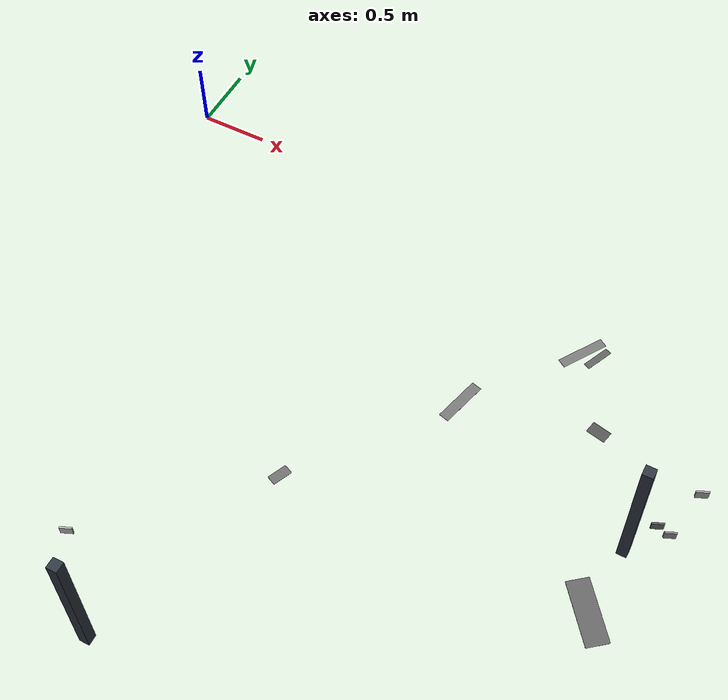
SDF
<sdf version="1.9">
 <world name="warehouse_irregular">
  <model name="concrete_patch_21">
   <static>true</static>
   <pose>3.4643936872537395 -0.6916489456248733 0.0006 0 0 1.0025813696339299</pose>
   <link name="body">
    <visual name="surface">
     <geometry><box><size>0.3482290640769431 0.06765525154568489 0.001</size></box></geometry>
     <material>
      <ambient>0.4630936487407965 0.4630936487407965 0.4630936487407965 1</ambient>
      <diffuse>0.4630936487407965 0.4630936487407965 0.4630936487407965 1</diffuse>
     </material>
    </visual>
   </link>
  </model>
  <model name="concrete_patch_47">
   <static>true</static>
   <pose>3.5740988044072353 -0.6872861657778788 0.0006 0 0 1.1461449394331407</pose>
   <link name="body">
    <visual name="surface">
     <geometry><box><size>0.20526132929796953 0.04882272836014845 0.001</size></box></geometry>
     <material>
      <ambient>0.3675721210238552 0.3675721210238552 0.3675721210238552 1</ambient>
      <diffuse>0.3675721210238552 0.3675721210238552 0.3675721210238552 1</diffuse>
     </material>
    </visual>
   </link>
  </model>
  <model name="concrete_patch_104">
   <static>true</static>
   <pose>4.22237485868752 -2.42491943350484 0.0006 0 0 2.2548706040531066</pose>
   <link name="body">
    <visual name="surface">
     <geometry><box><size>0.4359082625338231 0.15588403984259755 0.001</size></box></geometry>
     <material>
      <ambient>0.38875480409735785 0.38875480409735785 0.38875480409735785 1</ambient>
      <diffuse>0.38875480409735785 0.38875480409735785 0.38875480409735785 1</diffuse>
     </material>
    </visual>
   </link>
  </model>
  <model name="concrete_patch_134">
   <static>true</static>
   <pose>2.1094503961903257 -2.4800976965059967 0.0006 0 0 -1.9937864595237906</pose>
   <link name="body">
    <visual name="surface">
     <geometry><box><size>0.14003359996432566 0.07008242241919688 0.001</size></box></geometry>
     <material>
      <ambient>0.4255341782711739 0.4255341782711739 0.4255341782711739 1</ambient>
      <diffuse>0.4255341782711739 0.4255341782711739 0.4255341782711739 1</diffuse>
     </material>
    </visual>
   </link>
  </model>
  <model name="concrete_patch_210">
   <static>true</static>
   <pose>3.8038295842808516 -1.224935902429154 0.0006 0 0 -0.2099582232542061</pose>
   <link name="body">
    <visual name="surface">
     <geometry><box><size>0.138026857178355 0.08790780770998849 0.001</size></box></geometry>
     <material>
      <ambient>0.3209405144946094 0.3209405144946094 0.3209405144946094 1</ambient>
      <diffuse>0.3209405144946094 0.3209405144946094 0.3209405144946094 1</diffuse>
     </material>
    </visual>
   </link>
  </model>
  <model name="concrete_patch_217">
   <static>true</static>
   <pose>2.8953950914418307 -1.436734604248592 0.0006 0 0 -1.8283881353093092</pose>
   <link name="body">
    <visual name="surface">
     <geometry><box><size>0.34159505338822327 0.07480354228257692 0.001</size></box></geometry>
     <material>
      <ambient>0.45318867165517485 0.45318867165517485 0.45318867165517485 1</ambient>
      <diffuse>0.45318867165517485 0.45318867165517485 0.45318867165517485 1</diffuse>
     </material>
    </visual>
   </link>
  </model>
  <model name="panel_33_6_1">
   <static>true</static>
   <pose>1.2584672685486702 -3.535400296306526 0.2842015765578467 0 0 0.4123748377446077</pose>
   <link name="body">
    <visual name="surface">
     <geometry><box><size>0.08 0.012 0.065</size></box></geometry>
     <material>
      <ambient>0.7474109086735881 0.7474109086735881 0.7474109086735881 1</ambient>
      <diffuse>0.7474109086735881 0.7474109086735881 0.7474109086735881 1</diffuse>
     </material>
    </visual>
   </link>
  </model>
  <model name="post_33_1">
   <static>true</static>
   <pose>1.6569668317841577 -3.9652044067192374 0.5 0 0 0</pose>
   <link name="body">
    <visual name="surface">
     <geometry><box><size>0.07 0.07 1</size></box></geometry>
     <material><ambient>0.18 0.21 0.25 1</ambient><diffuse>0.18 0.21 0.25 1</diffuse></material>
    </visual>
    <collision name="solid"><geometry><box><size>0.07 0.07 1</size></box></geometry></collision>
   </link>
  </model>
  <model name="panel_35_3_1">
   <static>true</static>
   <pose>4.565748411697257 -1.7538256214631975 0.6799320656876879 0 0 0.4104070132629334</pose>
   <link name="body">
    <visual name="surface">
     <geometry><box><size>0.08 0.012 0.065</size></box></geometry>
     <material>
      <ambient>0.6388287183202325 0.6388287183202325 0.6388287183202325 1</ambient>
      <diffuse>0.6388287183202325 0.6388287183202325 0.6388287183202325 1</diffuse>
     </material>
    </visual>
   </link>
  </model>
  <model name="panel_35_4_1">
   <static>true</static>
   <pose>4.396162742968882 -1.8276149219427038 0.25513595820580637 0 0 0.4104070132629334</pose>
   <link name="body">
    <visual name="surface">
     <geometry><box><size>0.08 0.012 0.065</size></box></geometry>
     <material>
      <ambient>0.39634476183962475 0.39634476183962475 0.39634476183962475 1</ambient>
      <diffuse>0.39634476183962475 0.39634476183962475 0.39634476183962475 1</diffuse>
     </material>
    </visual>
   </link>
  </model>
  <model name="panel_35_6_1">
   <static>true</static>
   <pose>4.483265236456598 -1.7897153039344524 0.1448510427829095 0 0 0.4104070132629334</pose>
   <link name="body">
    <visual name="surface">
     <geometry><box><size>0.08 0.012 0.065</size></box></geometry>
     <material>
      <ambient>0.5479701918223817 0.5479701918223817 0.5479701918223817 1</ambient>
      <diffuse>0.5479701918223817 0.5479701918223817 0.5479701918223817 1</diffuse>
     </material>
    </visual>
   </link>
  </model>
  <model name="post_35_-1">
   <static>true</static>
   <pose>4.261962565705713 -1.9488574151722173 0.5 0 0 0</pose>
   <link name="body">
    <visual name="surface">
     <geometry><box><size>0.07 0.07 1</size></box></geometry>
     <material><ambient>0.18 0.21 0.25 1</ambient><diffuse>0.18 0.21 0.25 1</diffuse></material>
    </visual>
    <collision name="solid"><geometry><box><size>0.07 0.07 1</size></box></geometry></collision>
   </link>
  </model>
 </world>
</sdf>
